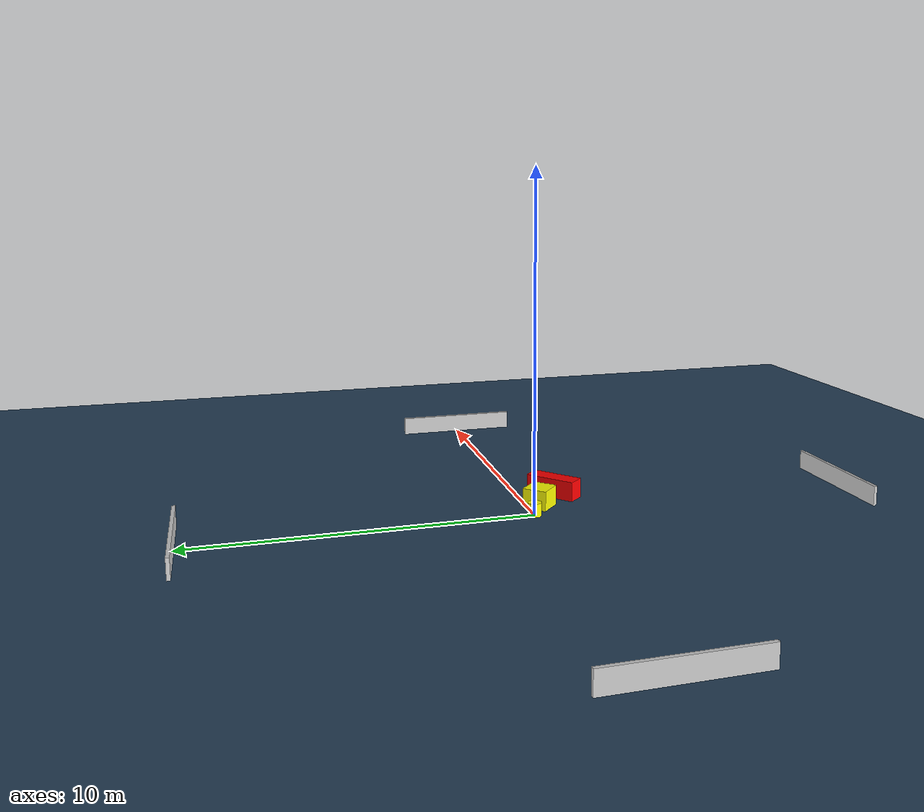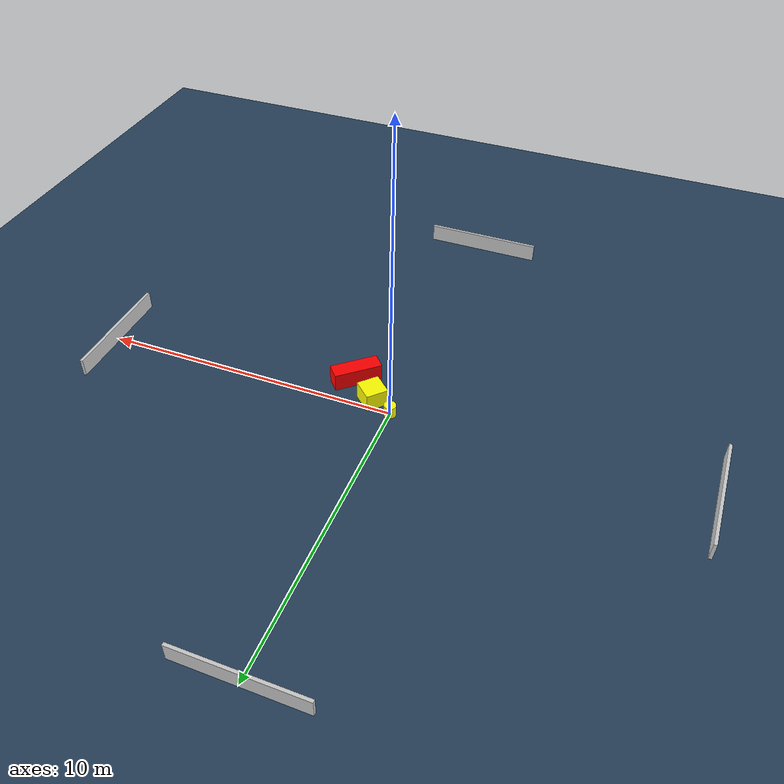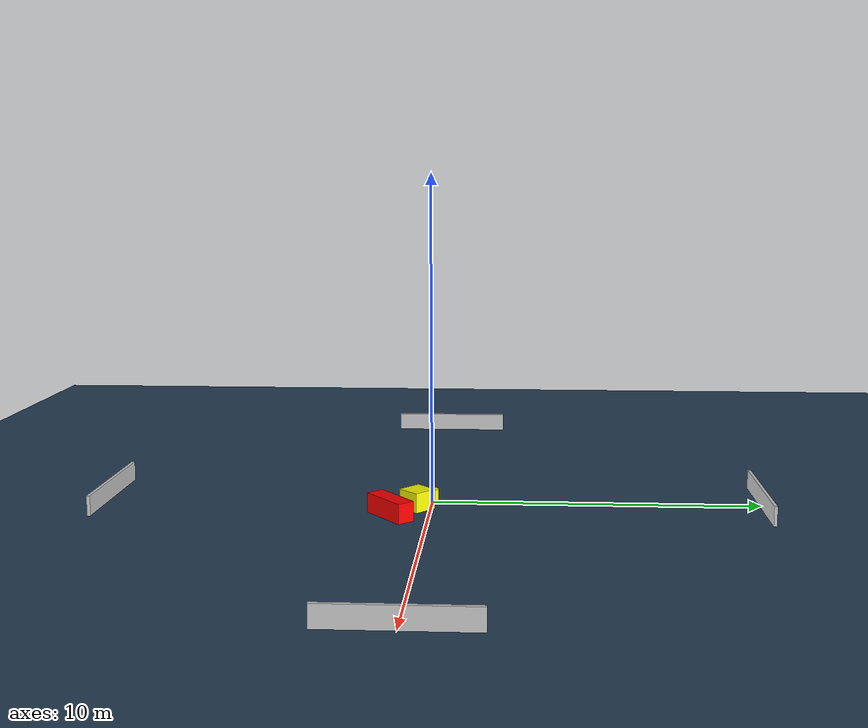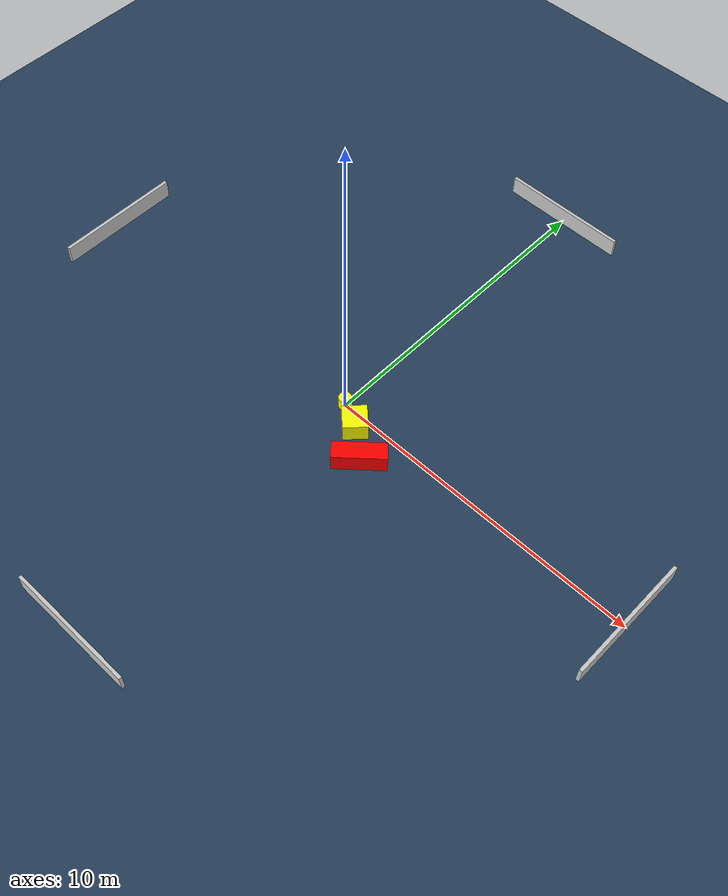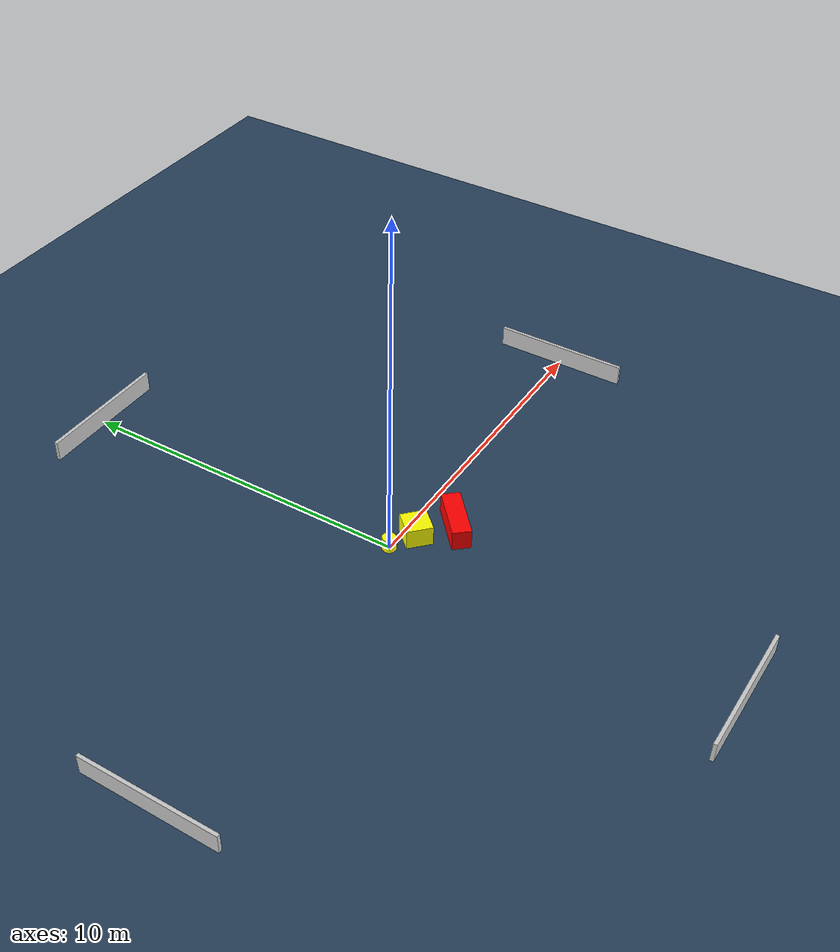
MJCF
<?xml version="1.0" ?>
<mujoco model="generated_environment">
  <option timestep="0.01" integrator="RK4" cone="elliptic"/>
  <default>
    <geom density="1"/>
  </default>
  <asset>
    <texture builtin="gradient" height="3072" name="skybox" rgb1="0.3 0.5 0.7" rgb2="0 0 0" type="skybox" width="512"/>
    <texture builtin="checker" height="300" name="groundplane" rgb1="0.2 0.3 0.4" rgb2="0.1 0.2 0.3" type="2d" width="300"/>
    <material name="groundplane" reflectance="0.2" texrepeat="5 5" texture="groundplane"/>
  </asset>
  <worldbody>
    <light dir="0 0 -1" directional="true" pos="0 0 1.5"/>
    <geom condim="3" friction="0.5 0.005 0.001" material="groundplane" name="floor" pos="0 0 0" size="0 0 0.05" type="plane"/>
    <body name="walls">
      <geom name="wall_1" condim="4" pos="-10.0 0.0 0.3" rgba="0.800000011920929 0.800000011920929 0.800000011920929 1.0" size="0.05 2.0 0.3" type="box"/>
      <geom name="wall_2" condim="4" pos="10.0 0.0 0.3" rgba="0.800000011920929 0.800000011920929 0.800000011920929 1.0" size="0.05 2.0 0.3" type="box"/>
      <geom name="wall_3" condim="4" pos="0.0 -10.0 0.3" rgba="0.800000011920929 0.800000011920929 0.800000011920929 1.0" size="2.0 0.05 0.3" type="box"/>
      <geom name="wall_4" condim="4" pos="0.0 10.0 0.3" rgba="0.800000011920929 0.800000011920929 0.800000011920929 1.0" size="2.0 0.05 0.3" type="box"/>
    </body>
    <body name="robot">
      <joint name="joint_x" type="slide" pos="0 0 0" axis="1 0 0"/>
      <joint name="joint_y" type="slide" pos="0 0 0" axis="0 1 0"/>
      <geom name="robot" type="cylinder" pos="0.0 0.0 0.2" size="0.2 0.2 0.0" mass="5.0" friction="1.0 0.005 0.0001" condim="4" rgba="1.0 1.0 0.0 1.0"/>
    </body>
    <body name="obstacle_1_movable">
      <geom name="obstacle_1_movable" condim="4" pos="0.7462567680001388 -0.384349829888961 0.3" euler="0 0 46.91369207124645" friction="0.0 0.005 0.001" rgba="1.0 1.0 0.0 1.0" size="0.3694508539468466 0.3765935477162451 0.3" type="box" mass="0.1"/>
      <joint type="free"/>
    </body>
    <body name="obstacle_2_static">
      <geom name="obstacle_2_static" condim="4" pos="1.6116726481280101 -1.1113813006435787 0.3" euler="0 0 41.525462515111904" friction="0.0 0.005 0.001" rgba="1.0 0.0 0.0 1.0" size="0.7962062444381599 0.270298761885759 0.3" type="box"/>
    </body>
  </worldbody>
  <actuator>
    <motor name="actuator_x" joint="joint_x" gear="1" ctrlrange="-1 1"/>
    <motor name="actuator_y" joint="joint_y" gear="1" ctrlrange="-1 1"/>
  </actuator>
</mujoco>
